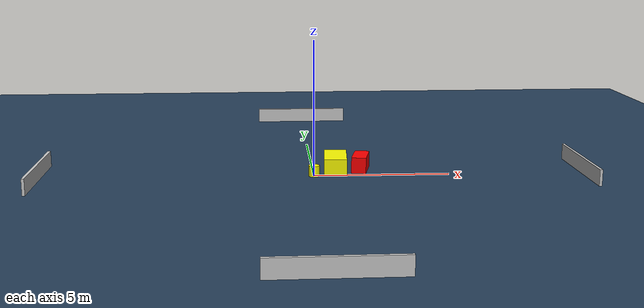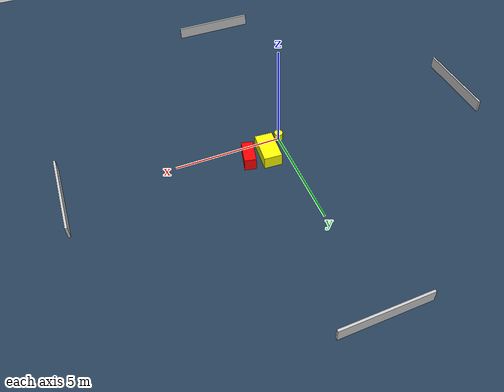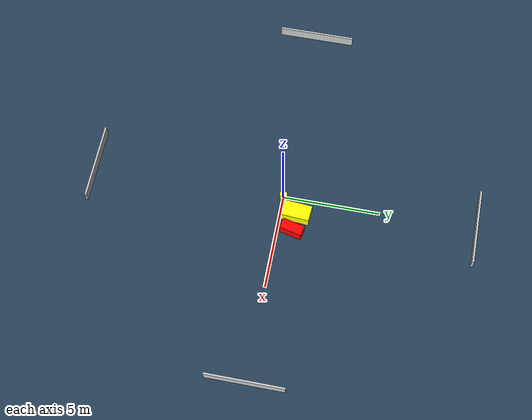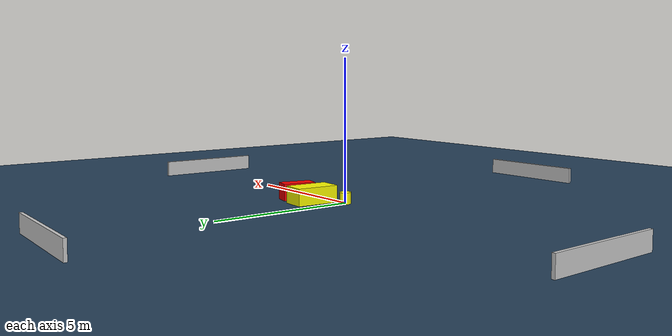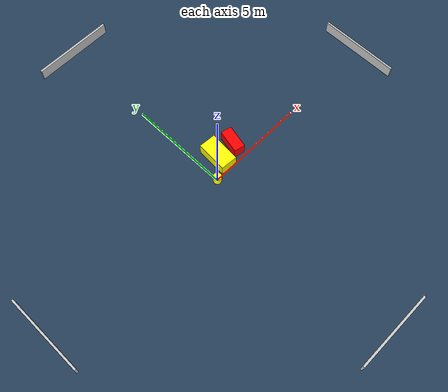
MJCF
<?xml version="1.0" ?>
<mujoco model="generated_environment">
  <option timestep="0.01" integrator="RK4" cone="elliptic"/>
  <default>
    <geom density="1"/>
  </default>
  <asset>
    <texture builtin="gradient" height="3072" name="skybox" rgb1="0.3 0.5 0.7" rgb2="0 0 0" type="skybox" width="512"/>
    <texture builtin="checker" height="300" name="groundplane" rgb1="0.2 0.3 0.4" rgb2="0.1 0.2 0.3" type="2d" width="300"/>
    <material name="groundplane" reflectance="0.2" texrepeat="5 5" texture="groundplane"/>
  </asset>
  <worldbody>
    <light dir="0 0 -1" directional="true" pos="0 0 1.5"/>
    <geom condim="3" friction="0.5 0.005 0.001" material="groundplane" name="floor" pos="0 0 0" size="0 0 0.05" type="plane"/>
    <body name="walls">
      <geom name="wall_1" condim="4" pos="-10.0 0.0 0.3" rgba="0.800000011920929 0.800000011920929 0.800000011920929 1.0" size="0.05 2.0 0.3" type="box"/>
      <geom name="wall_2" condim="4" pos="10.0 0.0 0.3" rgba="0.800000011920929 0.800000011920929 0.800000011920929 1.0" size="0.05 2.0 0.3" type="box"/>
      <geom name="wall_3" condim="4" pos="0.0 -10.0 0.3" rgba="0.800000011920929 0.800000011920929 0.800000011920929 1.0" size="2.0 0.05 0.3" type="box"/>
      <geom name="wall_4" condim="4" pos="0.0 10.0 0.3" rgba="0.800000011920929 0.800000011920929 0.800000011920929 1.0" size="2.0 0.05 0.3" type="box"/>
    </body>
    <body name="robot">
      <joint name="joint_x" type="slide" pos="0 0 0" axis="1 0 0"/>
      <joint name="joint_y" type="slide" pos="0 0 0" axis="0 1 0"/>
      <geom name="robot" type="cylinder" pos="0.0 0.0 0.2" size="0.2 0.2 0.0" mass="5.0" friction="1.0 0.005 0.0001" condim="4" rgba="1.0 1.0 0.0 1.0"/>
    </body>
    <body name="obstacle_1_movable">
      <geom name="obstacle_1_movable" condim="4" pos="0.8492094303962296 0.7975406043634021 0.3" euler="0 0 265.74876409042866" friction="0.0 0.005 0.001" rgba="1.0 1.0 0.0 1.0" size="0.7653780837014101 0.42023876748237127 0.3" type="box" mass="0.1"/>
      <joint type="free"/>
    </body>
    <body name="obstacle_2_static">
      <geom name="obstacle_2_static" condim="4" pos="1.7962290295064018 0.7801817932345322 0.3" euler="0 0 77.05233309729266" friction="0.0 0.005 0.001" rgba="1.0 0.0 0.0 1.0" size="0.5803229841456612 0.2710621470748387 0.3" type="box"/>
    </body>
  </worldbody>
  <actuator>
    <motor name="actuator_x" joint="joint_x" gear="1" ctrlrange="-1 1"/>
    <motor name="actuator_y" joint="joint_y" gear="1" ctrlrange="-1 1"/>
  </actuator>
</mujoco>
